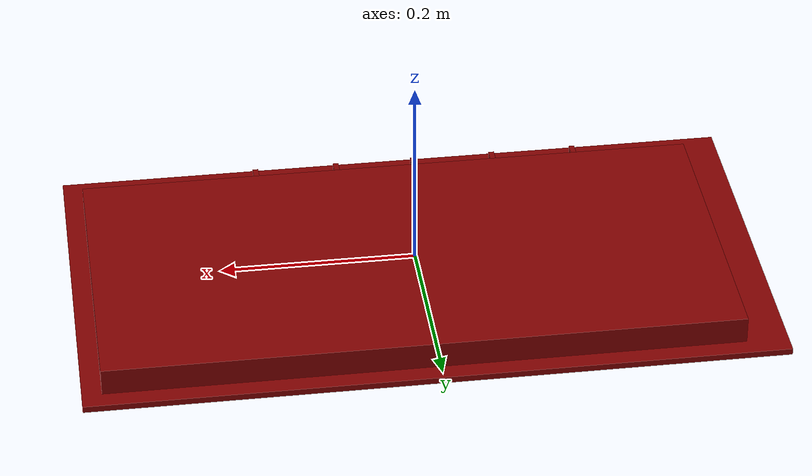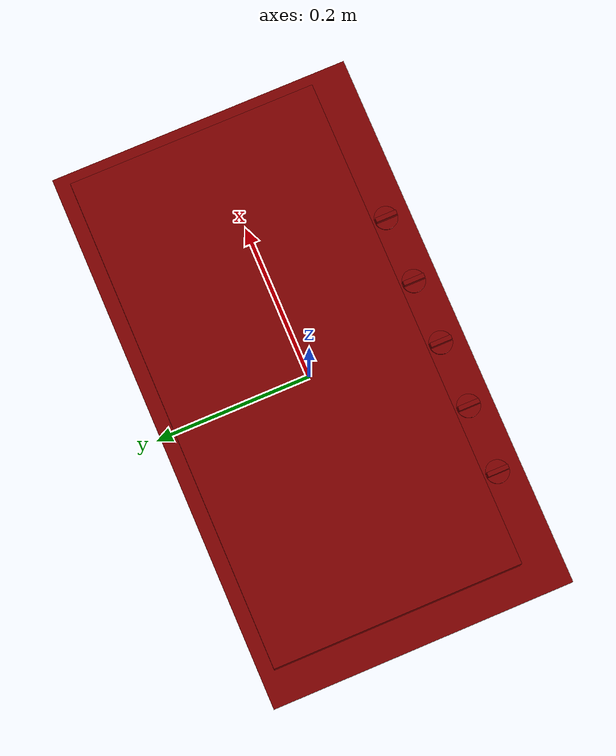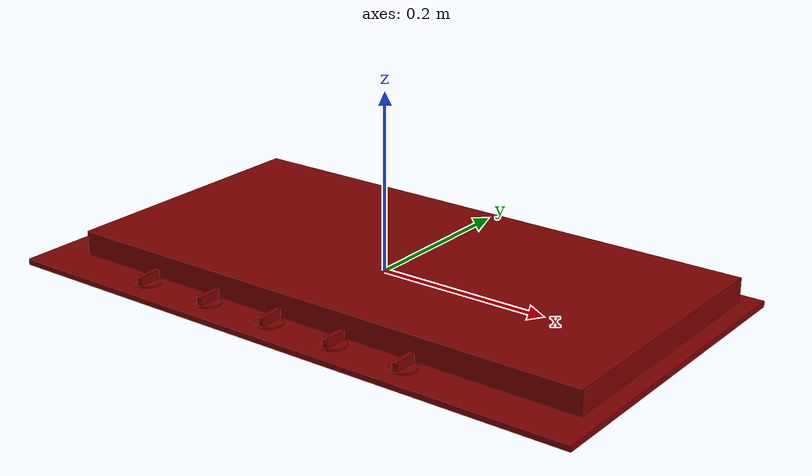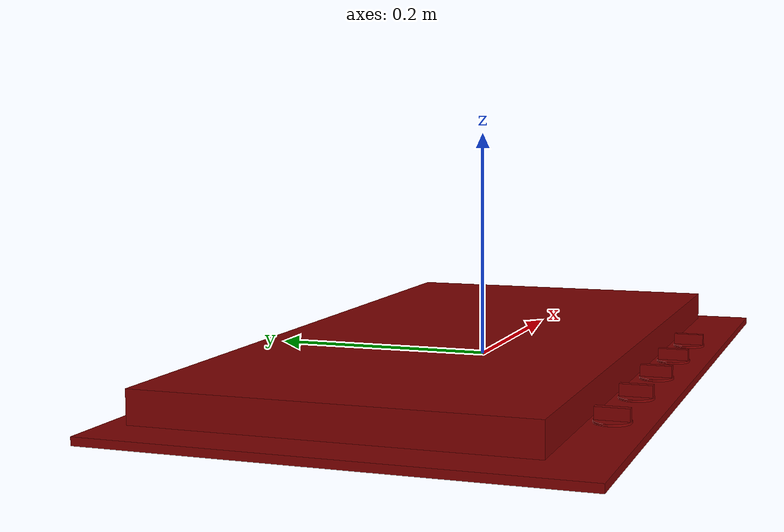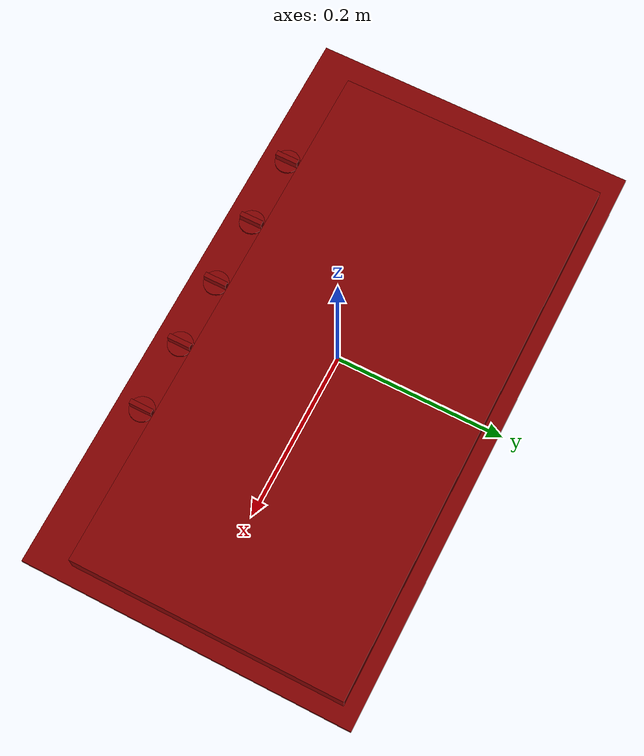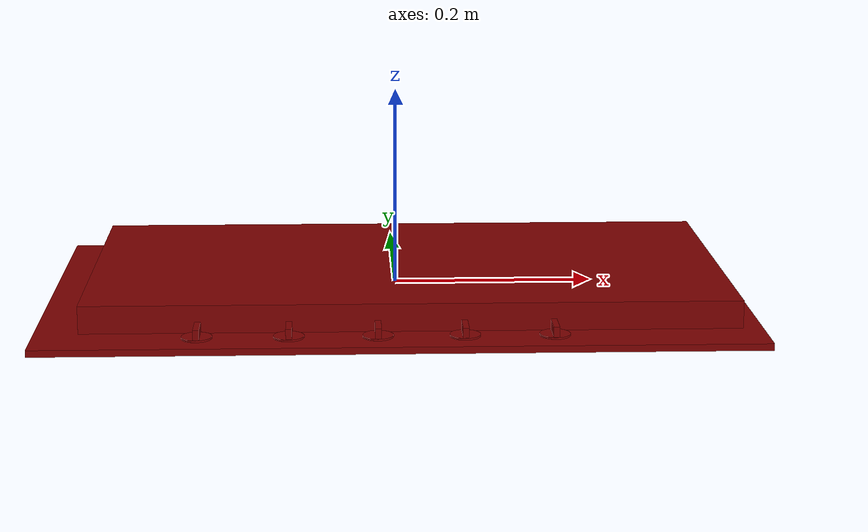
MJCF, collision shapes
<?xml version='1.0' encoding='UTF-8'?>
<mujoco model="model">
  <option timestep="0.002" gravity="0.0 0.0 -9.81"/>
  <compiler angle="radian"/>
  <asset>
    <mesh file="visuals/knob_center.obj" name="knob_center_vis"/>
    <mesh file="visuals/knob_front_left.obj" name="knob_front_left_vis"/>
    <mesh file="visuals/knob_front_right.obj" name="knob_front_right_vis"/>
    <mesh file="visuals/knob_rear_left.obj" name="knob_rear_left_vis"/>
    <mesh file="visuals/knob_rear_right.obj" name="knob_rear_right_vis"/>
    <mesh file="visuals/Body001.obj" name="Body001_vis"/>
    <mesh file="visuals/Body002.obj" name="Body002_vis"/>
    <texture file="visuals/T_BC001.png" name="Body001_material" type="2d"/>
    <material name="Body001_material" rgba="1 1 1 1.0" texture="Body001_material" shininess="0.2512328028678894" specular="1"/>
    <texture file="visuals/T_BC001.png" name="knob_center_material" type="2d"/>
    <material name="knob_center_material" rgba="1 1 1 1.0" texture="knob_center_material" shininess="0.2512328028678894" specular="0.3103448502657381"/>
    <texture file="visuals/T_BC001.png" name="knob_front_left_material" type="2d"/>
    <material name="knob_front_left_material" rgba="1 1 1 1.0" texture="knob_front_left_material" shininess="0.2512328028678894" specular="0.3103448502657381"/>
    <texture file="visuals/T_BC001.png" name="knob_front_right_material" type="2d"/>
    <material name="knob_front_right_material" rgba="1 1 1 1.0" texture="knob_front_right_material" shininess="0.2512328028678894" specular="0.3103448502657381"/>
    <texture file="visuals/T_BC001.png" name="knob_rear_left_material" type="2d"/>
    <material name="knob_rear_left_material" rgba="1 1 1 1.0" texture="knob_rear_left_material" shininess="0.2512328028678894" specular="0.3103448502657381"/>
    <texture file="visuals/T_BC001.png" name="knob_rear_right_material" type="2d"/>
    <material name="knob_rear_right_material" rgba="1 1 1 1.0" texture="knob_rear_right_material" shininess="0.2512328028678894" specular="0.3103448502657381"/>
    <texture file="visuals/T_BC001.png" name="Body002_material" type="2d"/>
    <material name="Body002_material" rgba="1 1 1 1.0" texture="Body002_material" shininess="0.2512328028678894" specular="3"/>
  </asset>
  <default>
    <default class="visual">
      <geom conaffinity="0" contype="0" group="1" type="mesh"/>
    </default>
    <default class="collision">
      <geom group="0" rgba="0.5 0 0 0.5"/>
    </default>
    <default class="spawn">
      <geom group="0" rgba="1 1 1 0.5" contype="0" conaffinity="0"/>
      <site group="0" rgba="1 1 1 0.5"/>
    </default>
    <default class="region">
      <geom group="1" conaffinity="0" contype="0" rgba="0 1 0 0"/>
    </default>
  </default>
  <worldbody>
    <body>
      <body name="object">
        <geom mesh="Body001_vis" type="mesh" solimp="0.998 0.998 0.001" solref="0.001 1" friction="0.95 0.3 0.1" class="visual" material="Body001_material"/>
        <geom class="collision" type="box" pos="-0.00000002 -0.00000004 -0.01375558" size="0.35133975744247437 0.19492700695991516 0.0033905429299920797" quat="1.0 0.0 0.0 0.0"/>
        <geom class="collision" type="box" pos="0.01146940 0.01616270 0.00339708" size="0.3201993405818939 0.16035503149032593 0.013762135989964008" quat="1.0 0.0 0.0 0.0"/>
        <body name="knob_center">
          <joint axis="0.0 0.0 1.0" pos="-0.02171858 -0.16454811 -0.00384272" limited="true" name="knob_center_joint" range="0.0 3.6651914291880923" type="hinge" damping="0.2" armature="0.01" frictionloss="1"/>
          <geom mesh="knob_center_vis" type="mesh" solimp="0.998 0.998 0.001" solref="0.001 1" friction="0.95 0.3 0.1" class="visual" material="knob_center_material"/>
          <geom class="collision" type="cylinder" pos="-0.02172021 -0.16453014 -0.00818815" size="0.014798812568187714 0.0009359997930005193" quat="1.0 0.0 0.0 0.0" friction="100 0.5 0.01"/>
          <geom class="collision" type="box" pos="-0.02166770 -0.16444397 -0.00230392" size="0.0029218827839940786 0.013743828050792217 0.005035351496189833" quat="1.0 0.0 0.0 0.0" name="knob_center_main" friction="100 0.5 0.01"/>
        </body>
        <body name="knob_front_left">
          <joint axis="0.0 0.0 1.0" pos="-0.19387552 -0.16454796 -0.00384268" limited="true" name="knob_front_left_joint" range="0.0 3.6651914291880923" type="hinge" damping="0.2" armature="0.01" frictionloss="1"/>
          <geom mesh="knob_front_left_vis" type="mesh" solimp="0.998 0.998 0.001" solref="0.001 1" friction="0.95 0.3 0.1" class="visual" material="knob_front_left_material"/>
          <geom class="collision" type="cylinder" pos="-0.19387773 -0.16453014 -0.00818815" size="0.014798812568187714 0.0009359997930005193" quat="1.0 0.0 0.0 0.0" friction="100 0.5 0.01"/>
          <geom class="collision" type="box" pos="-0.19382520 -0.16444397 -0.00230392" size="0.0029218827839940786 0.013743828050792217 0.005035351496189833" quat="1.0 0.0 0.0 0.0" name="knob_front_left_main" friction="100 0.5 0.01"/>
        </body>
        <body name="knob_front_right">
          <joint axis="0.0 0.0 1.0" pos="0.14702818 -0.16454808 -0.00384234" limited="true" name="knob_front_right_joint" range="0.0 3.6651914291880923" type="hinge" damping="0.2" armature="0.01" frictionloss="1"/>
          <geom mesh="knob_front_right_vis" type="mesh" solimp="0.998 0.998 0.001" solref="0.001 1" friction="0.95 0.3 0.1" class="visual" material="knob_front_right_material"/>
          <geom class="collision" type="cylinder" pos="0.14708915 -0.16453014 -0.00818815" size="0.014798812568187714 0.0009359997930005193" quat="1.0 0.0 0.0 0.0" friction="100 0.5 0.01"/>
          <geom class="collision" type="box" pos="0.14714165 -0.16444397 -0.00230392" size="0.0029218827839940786 0.013743828050792217 0.005035351496189833" quat="1.0 0.0 0.0 0.0" name="knob_front_right_main" friction="100 0.5 0.01"/>
        </body>
        <body name="knob_rear_left">
          <joint axis="0.0 0.0 1.0" pos="-0.10653371 -0.16454779 -0.00384285" limited="true" name="knob_rear_left_joint" range="0.0 3.6651914291880923" type="hinge" damping="0.2" armature="0.01" frictionloss="1"/>
          <geom mesh="knob_rear_left_vis" type="mesh" solimp="0.998 0.998 0.001" solref="0.001 1" friction="0.95 0.3 0.1" class="visual" material="knob_rear_left_material"/>
          <geom class="collision" type="cylinder" pos="-0.10649148 -0.16453014 -0.00818815" size="0.014798812568187714 0.0009359997930005193" quat="1.0 0.0 0.0 0.0" friction="100 0.5 0.01"/>
          <geom class="collision" type="box" pos="-0.10643896 -0.16444397 -0.00230392" size="0.0029218827839940786 0.013743828050792217 0.005035351496189833" quat="1.0 0.0 0.0 0.0" name="knob_rear_left_main" friction="100 0.5 0.01"/>
        </body>
        <body name="knob_rear_right">
          <joint axis="0.0 0.0 1.0" pos="0.06127256 -0.16454810 -0.00384248" limited="true" name="knob_rear_right_joint" range="0.0 3.6651914291880923" type="hinge" damping="0.2" armature="0.01" frictionloss="1"/>
          <geom mesh="knob_rear_right_vis" type="mesh" solimp="0.998 0.998 0.001" solref="0.001 1" friction="0.95 0.3 0.1" class="visual" material="knob_rear_right_material"/>
          <geom class="collision" type="cylinder" pos="0.06128004 -0.16453014 -0.00818815" size="0.014798812568187714 0.0009359997930005193" quat="1.0 0.0 0.0 0.0" friction="100 0.5 0.01"/>
          <geom class="collision" type="box" pos="0.06133255 -0.16444397 -0.00230392" size="0.0029218827839940786 0.013743828050792217 0.005035351496189833" quat="1.0 0.0 0.0 0.0" name="knob_rear_right_main" friction="100 0.5 0.01"/>
        </body>
        <body name="Body002">
          <geom mesh="Body002_vis" type="mesh" solimp="0.998 0.998 0.001" solref="0.001 1" friction="0.95 0.3 0.1" class="visual" material="Body002_material"/>
        </body>
        <site type="cylinder" rgba="0.3 0.4 1 0.5" size="0.031039979308843613 0.0026827813126146793" pos="-0.23412663 -0.06868687 0.00526870" name="burner_on_front_left"/>
        <site type="cylinder" rgba="0.3 0.4 1 0.5" size="0.0388636477291584 0.0029999760445207357" pos="0.22262686 -0.05143708 0.00566337" name="burner_on_front_right"/>
        <site type="cylinder" rgba="0.3 0.4 1 0.5" size="0.03170698881149292 0.0026528744492679834" pos="-0.19920354 0.10191014 0.00538281" name="burner_on_rear_left"/>
        <site type="cylinder" rgba="0.3 0.4 1 0.5" size="0.02689894661307335 0.002362231258302927" pos="0.19548251 0.11091150 0.00538078" name="burner_on_rear_right"/>
        <site type="cylinder" rgba="0.3 0.4 1 0.5" size="0.03561927750706673 0.0027672413270920515" pos="-0.00185037 0.03284667 0.00501985" name="burner_on_center"/>
        <site type="cylinder" rgba="0.5 0 0 0" size="0.03561927750706673 4.999999873689376e-05" pos="-0.00185037 0.03284667 0.01715920" name="burner_center_place_site"/>
        <site type="cylinder" rgba="0.5 0 0 0" size="0.031039979308843613 4.999999873689376e-05" pos="-0.23412663 -0.06868687 0.01715921" name="burner_front_left_place_site"/>
        <site type="cylinder" rgba="0.5 0 0 0" size="0.0388636477291584 4.999999873689376e-05" pos="0.22262686 -0.05143708 0.01715920" name="burner_front_right_place_site"/>
        <site type="cylinder" rgba="0.5 0 0 0" size="0.03170698881149292 4.999999873689376e-05" pos="-0.19920354 0.10191014 0.01715920" name="burner_rear_left_place_site"/>
        <site type="cylinder" rgba="0.5 0 0 0" size="0.02689894661307335 4.999999873689376e-05" pos="0.19548251 0.11091150 0.01715920" name="burner_rear_right_place_site"/>
        <geom class="region" name="reg_main" type="box" pos="4.999999997368221e-09 -9.999999994736442e-09 -0.01375559" size="0.35233975500000003 0.19592692 0.004390539999999999"/>
      </body>
    </body>
  </worldbody>
  <actuator>
    <motor name="knob_center_joint_actuator" joint="knob_center_joint" gear="10"/>
    <motor name="knob_front_left_joint_actuator" joint="knob_front_left_joint" gear="10"/>
    <motor name="knob_front_right_joint_actuator" joint="knob_front_right_joint" gear="10"/>
    <motor name="knob_rear_left_joint_actuator" joint="knob_rear_left_joint" gear="10"/>
    <motor name="knob_rear_right_joint_actuator" joint="knob_rear_right_joint" gear="10"/>
  </actuator>
</mujoco>
